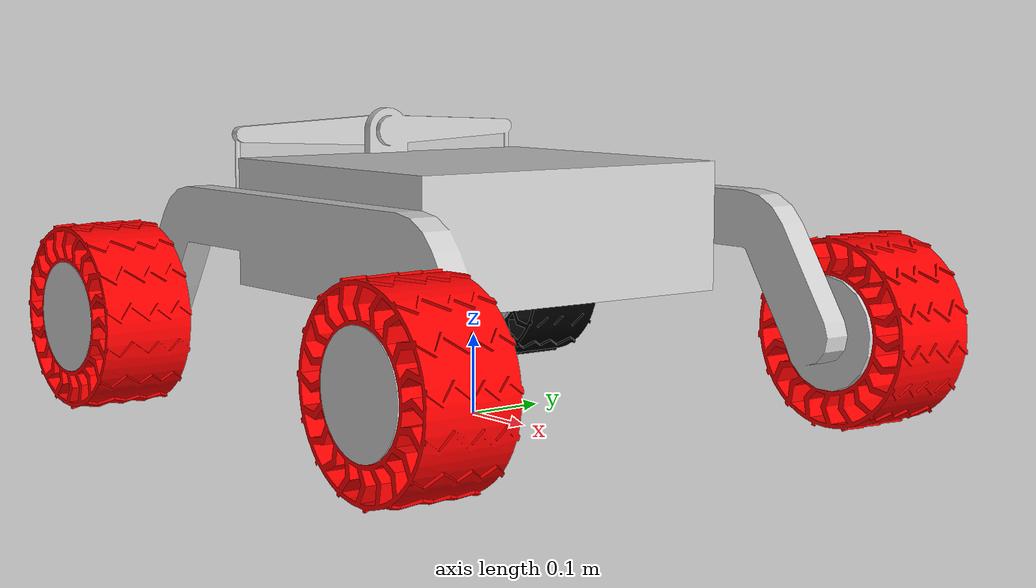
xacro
<?xml version="1.0"?>
<robot xmlns:xacro="http://www.ros.org/wiki/xacro">

    <!-- MATERIALS -->

    <material name="chassis_material">
        <color rgba="0.8 0.8 0.8 1" />
        <specular rgba="0.5 0.5 0.5 1" />
    </material>

    <material name="red_wheel_material">
        <color rgba="1 0 0 1" />
    </material>

    <material name="black_wheel_material">
        <color rgba="0 0 0 1" />
    </material>

    <!-- BASE LINK -->

    <link name="base_link">
    </link>

    <joint name="base_footprint_joint" type="fixed">
        <parent link="base_link"/>
	    <child link="base_footprint"/>
	    <origin xyz="0 0 0" rpy="0 0 0"/>
    </joint>

    <link name="base_footprint">
    </link>

    <joint name="chassis_joint" type="fixed">
        <parent link="base_link" />
        <child link="chassis" />
        <origin xyz="0 0 0.18" />
    </joint>

    <link name="chassis">
        <visual>
            <origin
                xyz="0 0 -0.18"
                rpy="0 0 ${pi/2}" />
            <geometry>
                <mesh filename="package://cengaver_rover_description/meshes/base_link.STL" />
            </geometry>
            <material name="chassis_material" />
        </visual>
        <collision>
            <origin
                xyz="0 0 -0.18"
                rpy="0 0 ${pi/2}" />
            <geometry>
                <mesh filename="package://cengaver_rover_description/meshes/base_link.STL" />
            </geometry>
        </collision>
        <inertial>
            <origin
              xyz="-7.52548912075213E-10 0.00133985465192443 0.215427058661404"
              rpy="0 0 0" />
            <mass
              value="40.1379079681851" />
            <inertia
              ixx="1.16900142531114"
              ixy="0.00108521345983988"
              ixz="0.133695257924101"
              iyy="1.25971045307986"
              iyz="-0.00509655633734715"
              izz="2.16268381145349" />
          </inertial>

    </link>

    <gazebo reference="chassis">
        <material>PR2/Grey1   </material>
      </gazebo>

    <!-- FRONT LEFT WHEEL LINK -->

    <joint name="front_left_wheel_joint" type="continuous">
        <parent link="base_link" />
        <child link="front_left_wheel" />
        <origin
            xyz="0.338 0.394 0.117"
            rpy=" 0 -1.571 -1.571" />
        <axis xyz="0 0 1" />
    </joint>

    <link name="front_left_wheel">
        <visual>
            <origin
                xyz="0 0 0"
                rpy="0 0 0" />
            <geometry>
                <mesh filename="package://cengaver_rover_description/meshes/wheel1.STL" />
            </geometry>
            <material name="red_wheel_material" />
        </visual>
        <collision>
            <origin
                xyz="0 0 0"
                rpy="0 0 0" />
            <geometry>
                <mesh filename="package://cengaver_rover_description/meshes/wheel1.STL" />
            </geometry>
        </collision>
        <inertial>
            <origin
              xyz="0.000122612981227871 1.98732798040169E-06 -0.0576270454609041"
              rpy="0 0 0" />
            <mass
              value="1.37210716126655" />
            <inertia
              ixx="0.00789978615382761"
              ixy="6.69001163873593E-07"
              ixz="-1.06816776348498E-06"
              iyy="0.00786607684314157"
              iyz="-2.52943863764599E-08"
              izz="0.0127489505715837" />
          </inertial>
    </link>

    <gazebo reference="front_left_wheel">
        <material>Gazebo/Red</material>
      </gazebo>

    <!-- FRONT RIGHT WHEEL LINK -->

    <joint name="front_right_wheel_joint" type="continuous">
        <parent link="base_link" />
        <child link="front_right_wheel" />
        <origin
            xyz="0.338 -0.394 0.117"
            rpy=" 0 1.571 -1.571" />
        <axis xyz="0 0 -1" />
    </joint>

    <link name="front_right_wheel">
        <visual>
            <origin
                xyz="0 0 0"
                rpy="0 0 0" />
            <geometry>
                <mesh filename="package://cengaver_rover_description/meshes/wheel1.STL" />
            </geometry>
            <material name="red_wheel_material" />
        </visual>
        <collision>
            <origin
                xyz="0 0 0"
                rpy="0 0 0" />
            <geometry>
                <mesh filename="package://cengaver_rover_description/meshes/wheel1.STL" />
            </geometry>
        </collision>
        <inertial>
            <origin
              xyz="0.000122612982376591 1.98732819672864E-06 -0.0576270454601775"
              rpy="0 0 0" />
            <mass
              value="1.37210716127024" />
            <inertia
              ixx="0.00789978615355147"
              ixy="6.69001094577587E-07"
              ixz="-1.06816769246315E-06"
              iyy="0.00786607684342405"
              iyz="-2.52943345351912E-08"
              izz="0.0127489505715955" />
          </inertial>
    </link>

    <gazebo reference="front_right_wheel">
        <material>Gazebo/Red</material>
      </gazebo>

    <!-- BACK LEFT WHEEL LINK -->

    <joint name="back_left_wheel_joint" type="continuous">
        <parent link="base_link" />
        <child link="back_left_wheel" />
        <origin
            xyz="-0.338 0.394 0.117"
            rpy=" 0 -1.571 -1.571" />
        <axis xyz="0 0 1" />
    </joint>

    <link name="back_left_wheel">
        <visual>
            <origin
                xyz="0 0 0"
                rpy="0 0 0" />
            <geometry>
                <mesh filename="package://cengaver_rover_description/meshes/wheel1.STL" />
            </geometry>
            <material name="black_wheel_material" />
        </visual>
        <collision>
            <origin
                xyz="0 0 0"
                rpy="0 0 0" />
            <geometry>
                <mesh filename="package://cengaver_rover_description/meshes/wheel1.STL" />
            </geometry>
        </collision>
        <inertial>
            <origin
              xyz="0.000122612982376979 1.98732819572944E-06 -0.0576270454601775"
              rpy="0 0 0" />
            <mass
              value="1.37210716127023" />
            <inertia
              ixx="0.00789978615355137"
              ixy="-6.69001094576813E-07"
              ixz="1.06816769245835E-06"
              iyy="0.00786607684342403"
              iyz="-2.52943345498765E-08"
              izz="0.0127489505715954" />
          </inertial>
    </link>

    <gazebo reference="back_left_wheel">
        <material>Gazebo/Black</material>
      </gazebo>

    <!-- BACK RIGHT WHEEL LINK -->

    <joint name="back_right_wheel_joint" type="continuous">
        <parent link="base_link" />
        <child link="back_right_wheel" />
        <origin
            xyz="-0.338 -0.394 0.117"
            rpy=" 0 1.571 -1.571" />
        <axis xyz="0 0 -1" />
    </joint>

    <link name="back_right_wheel">
        <visual>
            <origin
                xyz="0 0 0"
                rpy="0 0 0" />
            <geometry>
                <mesh filename="package://cengaver_rover_description/meshes/wheel1.STL" />
            </geometry>
            <material name="red_wheel_material" />
        </visual>
        <collision>
            <origin
                xyz="0 0 0"
                rpy="0 0 0" />
            <geometry>
                <mesh filename="package://cengaver_rover_description/meshes/wheel1.STL" />
            </geometry>
        </collision>
        <inertial>
            <origin
              xyz="0.000122612982376147 1.98732819589598E-06 -0.0576270454601775"
              rpy="0 0 0" />
            <mass
              value="1.37210716127023" />
            <inertia
              ixx="0.00789978615355138"
              ixy="6.69001094539057E-07"
              ixz="-1.06816769244459E-06"
              iyy="0.007866076843424"
              iyz="-2.52943345308376E-08"
              izz="0.0127489505715954" />
          </inertial>
    </link>

    <gazebo reference="back_right_wheel">
        <material>Gazebo/Red</material>
      </gazebo>

</robot>
